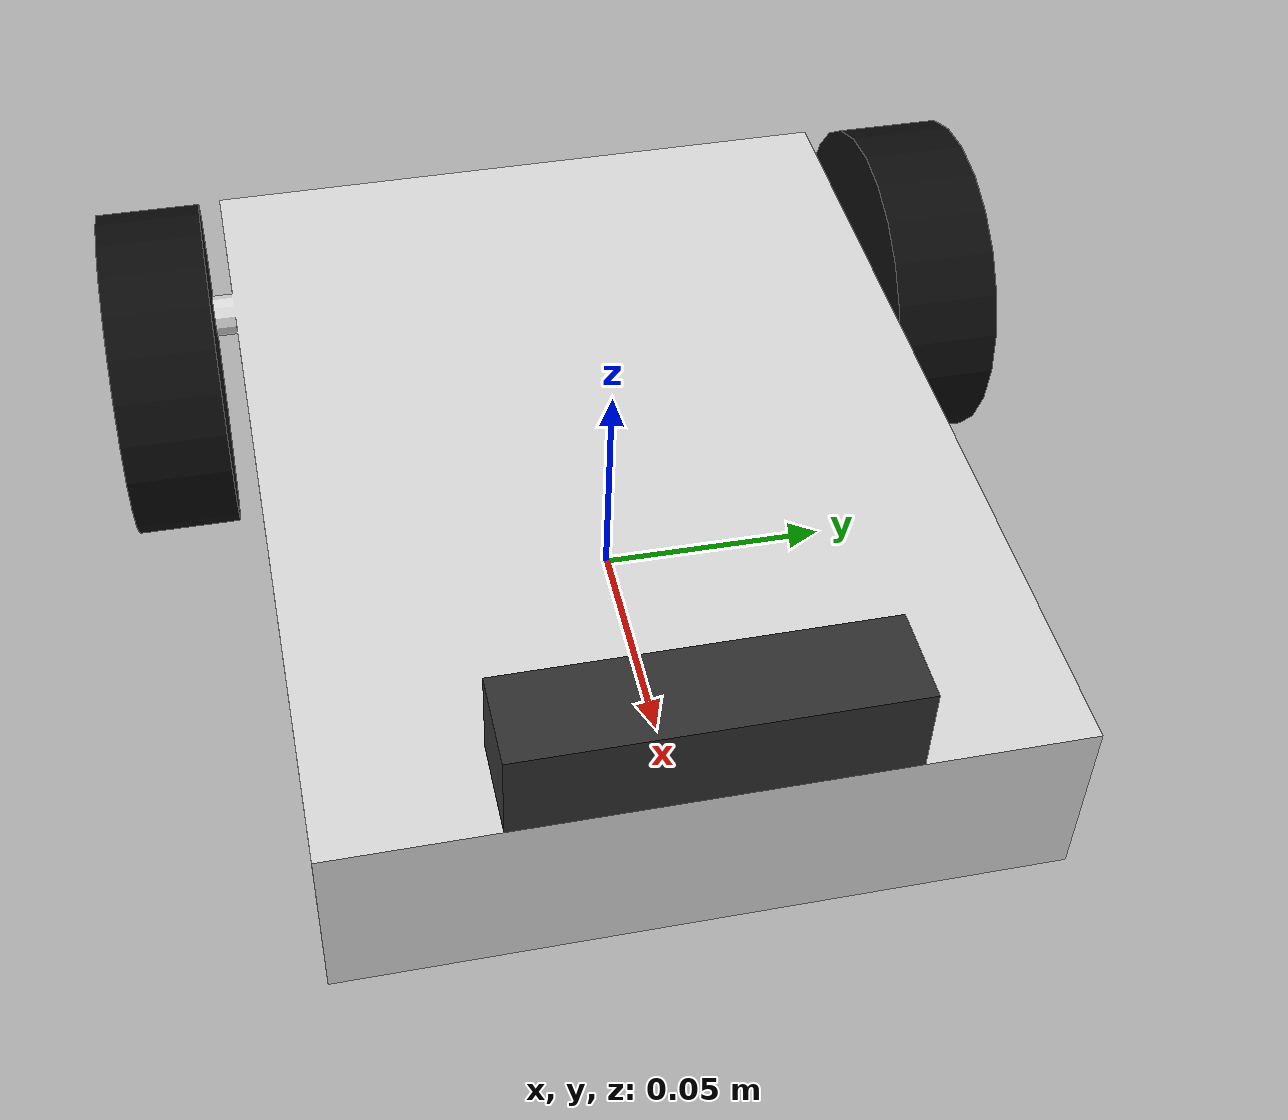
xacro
<?xml version="1.0"?>
<robot name="warehouse_bot" xmlns:xacro="http://www.ros.org/wiki/xacro">

  <xacro:arg name="namespace" default="" />
  <xacro:property name="ns" value="$(arg namespace)" />

  <!-- Colour palette: white body, black wheels (RViz materials) -->
  <material name="wb_white"><color rgba="0.9 0.9 0.9 1.0" /></material>
  <material name="wb_black"><color rgba="0.05 0.05 0.05 1.0" /></material>
  <material name="wb_darkgrey"><color rgba="0.2 0.2 0.2 1.0" /></material>

  <!-- base_link -->
  <link name="base_link">
    <inertial>
      <origin xyz="-0.08 0.0 0.0015304" rpy="0 0 0" />
      <mass value="2.5" />
      <inertia ixx="0.005016" ixy="5.98E-05" ixz="2.56E-05" iyy="0.013036" iyz="9.1E-06" izz="0.008703" />
    </inertial>
    <visual>
      <origin xyz="0 0 0" rpy="0 0 0" />
      <geometry>
        <mesh filename="package://warehouse_bot_package/meshes/base_link.STL" />
      </geometry>
      <material name="wb_white" />
    </visual>
    <!-- Chassis box, lifted clear of the floor so it never drags. -->
    <collision name="chassis_box">
      <origin xyz="-0.0025 -0.002 0.03" rpy="0 0 0" />
      <geometry>
        <box size="0.20 0.16 0.05" />
      </geometry>
    </collision>
    <collision name="front_skid">
      <origin xyz="0.082 0 -0.0275" rpy="0 0 0" />
      <geometry><box size="0.05 0.05 0.005" /></geometry>
    </collision>
    <collision name="rear_skid">
      <origin xyz="-0.100 0 -0.0275" rpy="0 0 0" />
      <geometry><box size="0.05 0.05 0.005" /></geometry>
    </collision>
  </link>

  <!-- right wheel -->
  <link name="right_wheel_link">
    <inertial>
      <origin xyz="7.4065E-05 -2.3548E-05 0.010725" rpy="0 0 0" />
      <mass value="0.10053" />
      <inertia ixx="4.3565E-05" ixy="-5.5889E-10" ixz="2.5455E-07" iyy="4.3564E-05" iyz="-8.093E-08" izz="8.0423E-05" />
    </inertial>
    <visual>
      <origin xyz="0 0 0" rpy="0 0 0" />
      <geometry>
        <cylinder radius="0.04" length="0.025" />
      </geometry>
      <material name="wb_black" />
    </visual>
    <collision>
      <origin xyz="0 0 0" rpy="0 0 0" />
      <geometry>
        <cylinder radius="0.04" length="0.025" />
      </geometry>
    </collision>
  </link>

  <joint name="right_wheel_joint" type="continuous">
    <origin xyz="-0.081593 -0.095 0.004" rpy="-1.5708 0 0" />
    <parent link="base_link" />
    <child link="right_wheel_link" />
    <axis xyz="0 0 1" />
  </joint>

  <!-- left wheel -->
  <link name="left_wheel_link">
    <inertial>
      <origin xyz="-7.6093E-05 2.4193E-05 -0.011019" rpy="0 0 0" />
      <mass value="0.10053" />
      <inertia ixx="4.3565E-05" ixy="-5.5889E-10" ixz="2.5455E-07" iyy="4.3564E-05" iyz="-8.093E-08" izz="8.0423E-05" />
    </inertial>
    <!-- Clean cylinder wheel (see right wheel note). -->
    <visual>
      <origin xyz="0 0 0" rpy="0 0 0" />
      <geometry>
        <cylinder radius="0.04" length="0.025" />
      </geometry>
      <material name="wb_black" />
    </visual>
    <collision>
      <origin xyz="0 0 0" rpy="0 0 0" />
      <geometry>
        <cylinder radius="0.04" length="0.025" />
      </geometry>
    </collision>
  </link>

  <joint name="left_wheel_joint" type="continuous">
    <origin xyz="-0.082616 0.095 0.004" rpy="-1.5708 0 0" />
    <parent link="base_link" />
    <child link="left_wheel_link" />
    <axis xyz="0 0 1" />
  </joint>

  <!-- lidar (visual mesh) -->
  <link name="lidar_link">
    <inertial>
      <origin xyz="0.078294 0.048464 0.039704" rpy="0 0 0" />
      <mass value="0.03424" />
      <inertia ixx="1.9402E-05" ixy="2.5957E-10" ixz="-1.1822E-07" iyy="1.9403E-05" iyz="3.7587E-08" izz="2.2836E-06" />
    </inertial>
    <visual>
      <origin xyz="0 0 0" rpy="0 0 0" />
      <geometry>
        <mesh filename="package://warehouse_bot_package/meshes/lidar_link.STL" />
      </geometry>
      <material name="wb_darkgrey" />
    </visual>
    <!-- No collision: the lidar is a sensor mount; a mesh collision here only
         risks catching the ground/obstacles. -->
  </link>

  <joint name="lidar_joint" type="fixed">
    <origin xyz="0.0097328 0.038718 3.9147E-05" rpy="1.5708 0 0" />
    <parent link="base_link" />
    <child link="lidar_link" />
  </joint>

  <link name="base_scan">
    <inertial>
      <mass value="0.001" />
      <inertia ixx="1e-7" ixy="0" ixz="0" iyy="1e-7" iyz="0" izz="1e-7" />
    </inertial>
  </link>

  <joint name="base_scan_joint" type="fixed">
    <origin xyz="0.0097 0.039 0.105" rpy="0 -0.04 0" />
    <parent link="base_link" />
    <child link="base_scan" />
  </joint>

  <!-- Gazebo (Classic 11) appearance, sensors and plugins -->

  <!-- Colours in Gazebo. Low friction on base_link so the front/rear skid
       collisions slide (they act like frictionless casters). -->
  <gazebo reference="base_link">
    <material>Gazebo/White</material>
    <mu1>0.1</mu1>
    <mu2>0.1</mu2>
  </gazebo>
  <gazebo reference="left_wheel_link">
    <material>Gazebo/Black</material>
    <mu1>1.0</mu1>
    <mu2>1.0</mu2>
  </gazebo>
  <gazebo reference="right_wheel_link">
    <material>Gazebo/Black</material>
    <mu1>1.0</mu1>
    <mu2>1.0</mu2>
  </gazebo>
  <gazebo reference="lidar_link">
    <material>Gazebo/DarkGrey</material>
  </gazebo>

  <gazebo reference="base_scan">
    <sensor name="lidar" type="ray">
      <always_on>true</always_on>
      <visualize>false</visualize>
      <update_rate>10</update_rate>
      <pose>0 0 0 0 0 0</pose>
      <ray>
        <scan>
          <horizontal>
            <samples>360</samples>
            <resolution>1.0</resolution>
            <min_angle>-3.141592</min_angle>
            <max_angle>3.141592</max_angle>
          </horizontal>
        </scan>
        <range>
          <min>0.16</min>
          <max>12.0</max>
          <resolution>0.015</resolution>
        </range>
        <noise>
          <type>gaussian</type>
          <mean>0.0</mean>
          <stddev>0.01</stddev>
        </noise>
      </ray>
      <plugin name="lidar_controller" filename="libgazebo_ros_ray_sensor.so">
        <ros>
          <namespace>${ns}</namespace>
          <remapping>~/out:=scan</remapping>
        </ros>
        <output_type>sensor_msgs/LaserScan</output_type>
        <frame_name>base_scan</frame_name>
      </plugin>
    </sensor>
  </gazebo>

  <gazebo>
    <plugin name="diff_drive" filename="libgazebo_ros_diff_drive.so">
      <ros>
        <namespace>${ns}</namespace>
        <remapping>/tf:=tf</remapping>
        <remapping>/tf_static:=tf_static</remapping>
      </ros>
      <left_joint>left_wheel_joint</left_joint>
      <right_joint>right_wheel_joint</right_joint>
      <wheel_separation>0.190</wheel_separation>
      <wheel_diameter>0.080</wheel_diameter>
      <max_wheel_torque>20</max_wheel_torque>
      <max_wheel_acceleration>4.0</max_wheel_acceleration>
      <command_topic>cmd_vel</command_topic>
      <publish_odom>true</publish_odom>
      <publish_odom_tf>true</publish_odom_tf>
      <publish_wheel_tf>false</publish_wheel_tf>
      <odometry_topic>odom</odometry_topic>
      <odometry_frame>odom</odometry_frame>
      <robot_base_frame>base_link</robot_base_frame>
    </plugin>
  </gazebo>

  <gazebo>
    <plugin name="p3d_base" filename="libgazebo_ros_p3d.so">
      <ros>
        <namespace>${ns}</namespace>
        <remapping>odom:=ground_truth</remapping>
      </ros>
      <body_name>base_link</body_name>
      <frame_name>map</frame_name>
      <update_rate>30.0</update_rate>
      <gaussian_noise>0.0</gaussian_noise>
    </plugin>
  </gazebo>

  <!-- Joint states for the wheels -->
  <gazebo>
    <plugin name="joint_state" filename="libgazebo_ros_joint_state_publisher.so">
      <ros>
        <namespace>${ns}</namespace>
        <remapping>~/out:=joint_states</remapping>
      </ros>
      <update_rate>30</update_rate>
      <joint_name>left_wheel_joint</joint_name>
      <joint_name>right_wheel_joint</joint_name>
    </plugin>
  </gazebo>

</robot>
